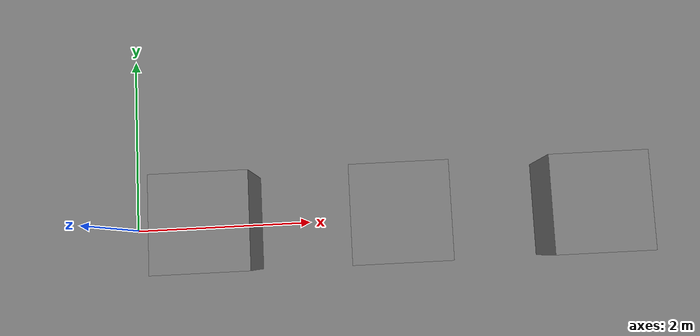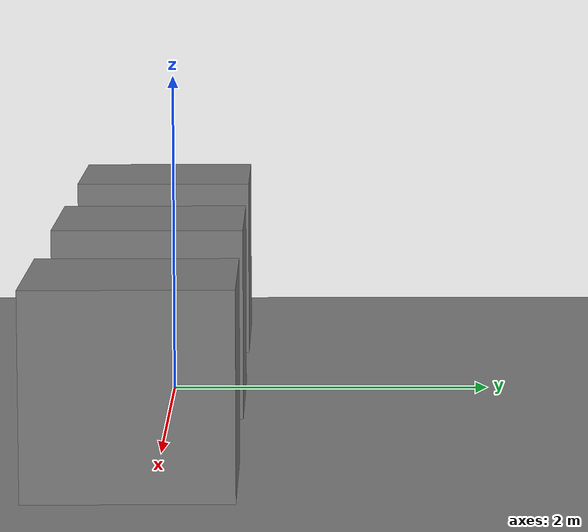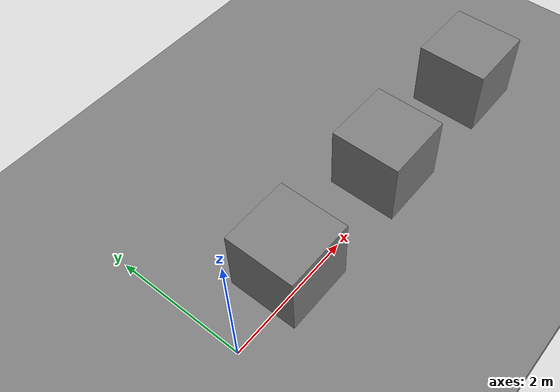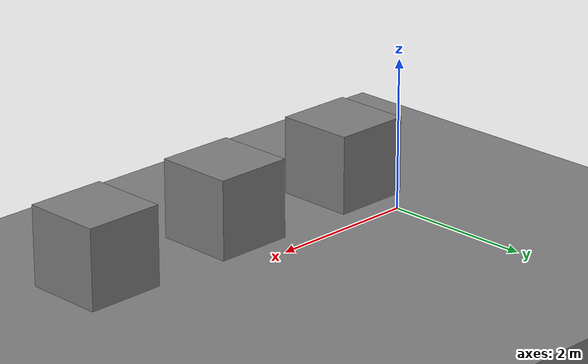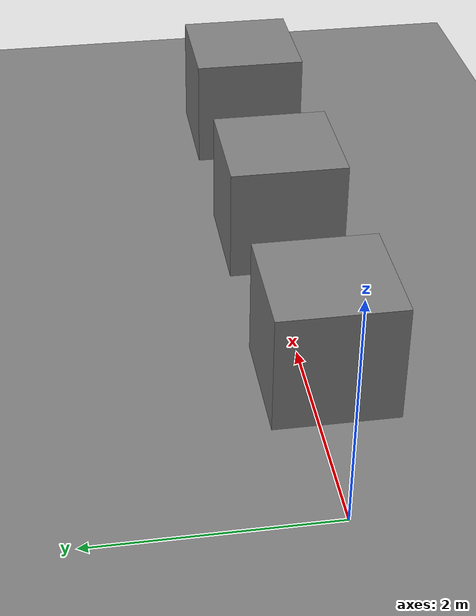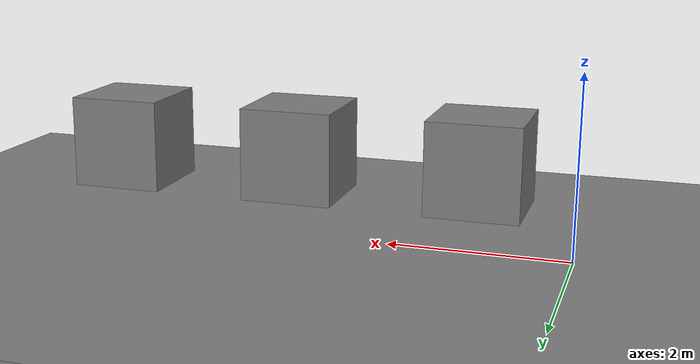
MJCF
<?xml version="1.0" encoding="utf-8"?>
<mujoco>
    <compiler angle="radian" coordinate="local" meshdir="..\stls" texturedir="../textures"></compiler>
    <option timestep="0.001" iterations="20" gravity="0 0 -9.8">
        <!--apirate only affects the socket API and not the physics simulation-->
        <flag warmstart="enable"></flag>
    </option>

    <asset>
        <mesh name="test" file = "E:/zju/newhand_stl/compress/handbase.stl"/>
        <mesh name="test1" file = "E:/zju/newhand_stl/compress/index1.stl"/>
    </asset>

    <worldbody>

        <body pos="1 0 0">
            <geom type="box" size="20 20 0.2" contype="2" conaffinity="1"/>

            <body pos="0 0 1">
                <geom type="box" size="0.5 0.5 0.5" contype="2" conaffinity="1"/>
                <joint type="slide"/>
            </body>

            <body pos="2 0 1">
                <geom type="box" size="0.5 0.5 0.5" contype="0" conaffinity="4"/>
                <joint type="slide"/>
            </body>

            <body pos="4 0 1">
                <geom type="box" size="0.5 0.5 0.5" contype="0" conaffinity="8"/>
                <joint type="slide"/>
            </body>

        </body>

        <light directional="true" ambient="0.2 0.2 0.2" diffuse="0.8 0.8 0.8" specular="0.3 0.3 0.3" castshadow="false" pos="0 1 4" dir="0 0 -1" name="light0"></light>
    </worldbody>
</mujoco>
